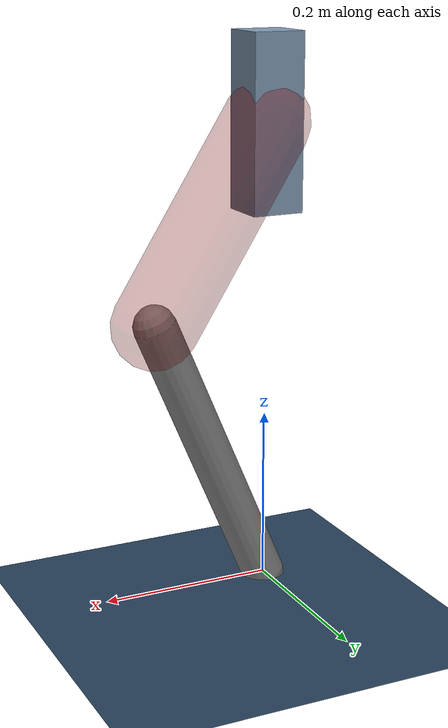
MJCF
<mujoco model="Hopper2D">
	<compiler inertiafromgeom="true" angle="radian" />
	<option timestep="0.001" integrator="implicit" cone="elliptic" solver="Newton" tolerance="1e-10" />

	<default>
		<geom contype="1" conaffinity="1" condim="3" friction="2 0.005 0.0001" solref="0.005 1" />
		<joint limited="true" damping="0.1" />
	</default>

	<asset>
		<texture name="skybox" type="skybox" builtin="gradient" rgb1=".4 .6 .8" rgb2="0 0 0" width="800" height="800" />
		<texture name="grid" type="2d" builtin="checker" rgb1=".1 .2 .3" rgb2=".2 .3 .4" width="300" height="300" mark="edge" markrgb=".2 .3 .4" />
		<material name="ground" texture="grid" texrepeat="1 1" texuniform="true" reflectance="0.1" />
		<material name="leg" rgba="0.5 0.6 0.7 1" />
	</asset>

	<worldbody>

		<geom name="floor" type="plane" size="5 5 0.25" material="ground" />

		<light directional="false" diffuse="0.8 0.8 0.8" specular="0.3 0.3 0.3" pos="0 0 2" dir="0 0 -1" />
		<light mode="targetbodycom" target="base" directional="false" diffuse="0.8 0.8 0.8" specular="0.3 0.3 0.3" pos="0 0 2" dir="0 0 -1" />

		<camera name="fixed" pos="0 -2 1" xyaxes="1 0 0 0 0 1" />
		<camera name="tracking" mode="trackcom" pos="0 -3 1" />

		<body name="root" pos="0 0 0.5410247678100834">
			<joint name="slide_x" type="slide" axis="1 0 0" range="-100 100" />
			<joint name="slide_z" type="slide" axis="0 0 1" range="0 10" />

			<body name="base" pos="0 0 0">
				<geom name="torso" type="box" size="0.03 0.03 0.1" mass="3.086" material="leg" />

				<body name="link1" pos="0 0 0" euler="0 1.011359331808582 0">
					<joint type="hinge" axis="0 -1 0" pos="0 0 0" name="hinge1" limited="true" range="-3.14 3.14" stiffness="0" damping="0.1" />
					<geom name="thigh" type="capsule" fromto="0 0 0 0.2593099157688404 0 0" size="0.05" rgba="0.5 0 0 0.3" mass="0.880605780998985" />

					<body name="link2" pos="0.2593099157688404 0 0" euler="0 0.9641747849920983 0">
						<joint type="hinge" axis="0 -1 0" pos="0 0 0" name="hinge2" limited="true" range="-3.14 3.14" stiffness="0" damping="0.1" />
						<geom name="shank" type="capsule" fromto="0 0 0 0.34948174099954626 0 0" size="0.025" mass="0.523485392799637" />

					</body>
				</body>
			</body>
		</body>
	</worldbody>

	<actuator>
		<motor name="torque1" joint="hinge1" ctrlrange="-200.0526085298195 200.0526085298195" ctrllimited="true" gear="1" />
		<motor name="torque2" joint="hinge2" ctrlrange="-33.52075581669355 33.52075581669355" ctrllimited="true" gear="1" />
	</actuator>
</mujoco>
